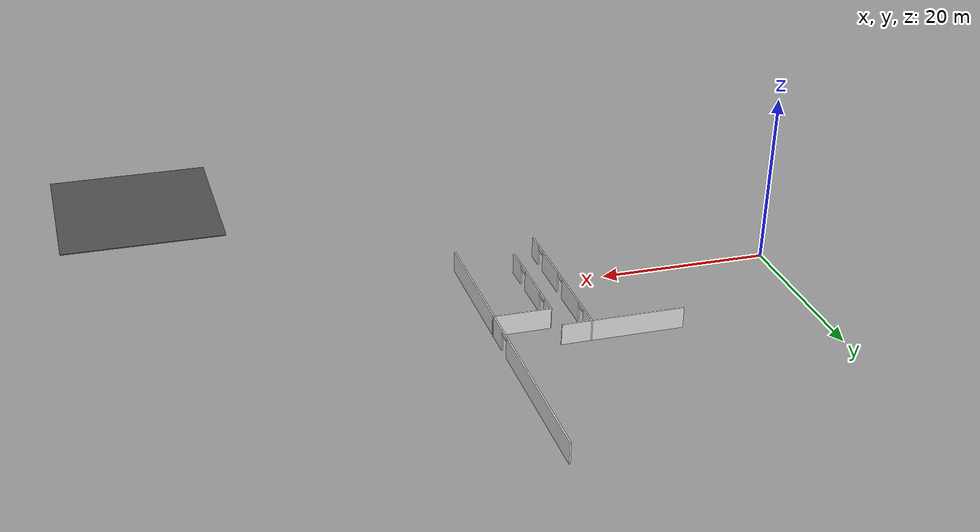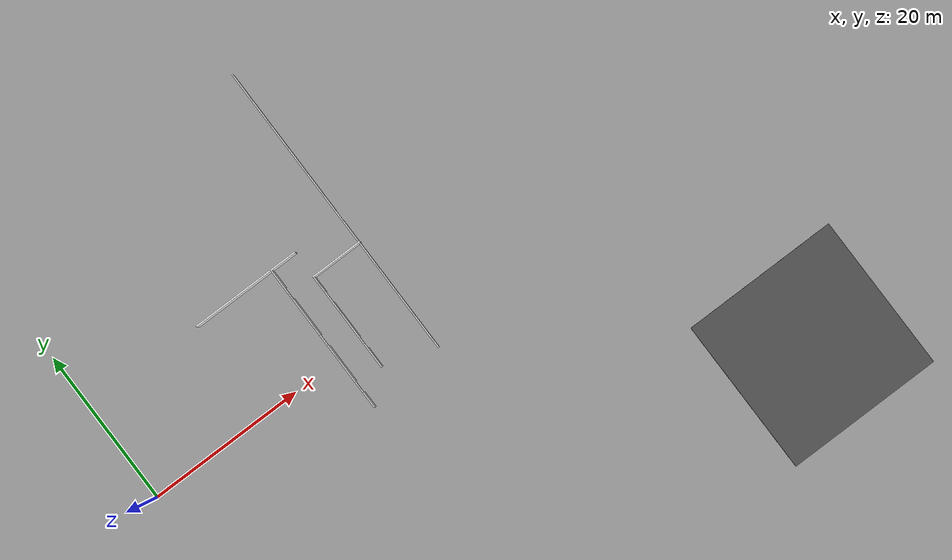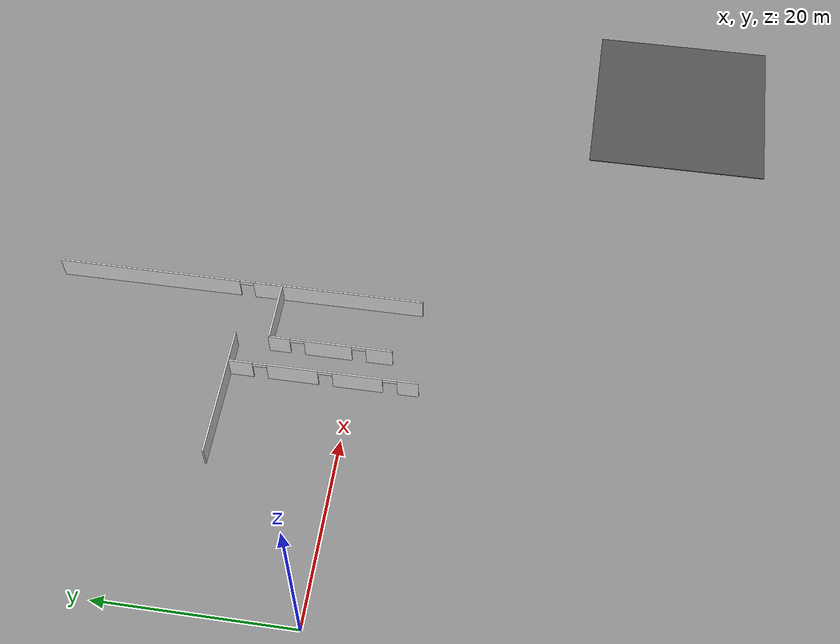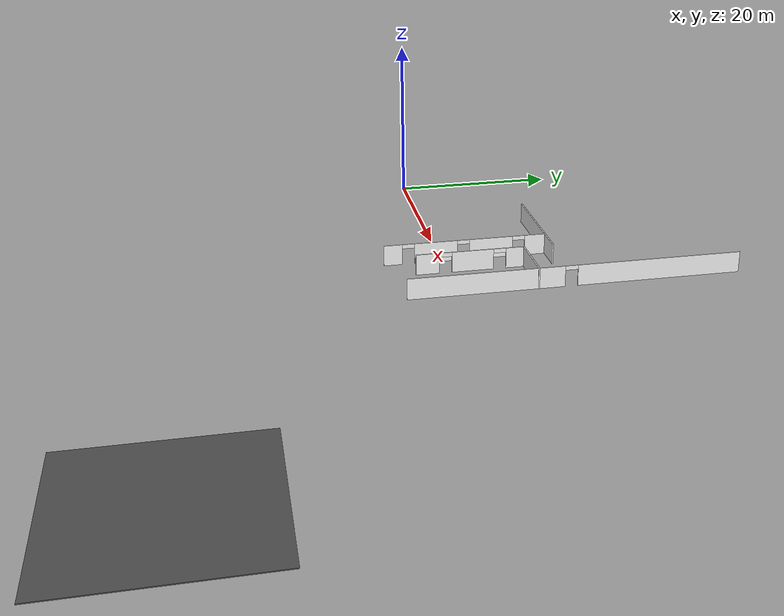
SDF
<sdf version="1.6">
 <world name="default">
  <model name="mainoffice">
   <pose>42.7555 15.4488 0 0 -0 0</pose>
   <link name="Wall_62">
    <pose>-16.4491 -12.475 0 0 -0 1.5708</pose>
    <visual name="Wall_62_Visual_0">
     <pose>-8.77826 0 1.25 0 -0 0</pose>
     <geometry><box><size>2.19348 0.15 2.5</size></box></geometry>
     <material>
      <script>
       <uri>model://office_env/materials/scripts</uri>
       <uri>model://office_env/materials/textures</uri>
       <name>wall</name>
      </script>
      <ambient>1 1 1 1</ambient>
     </material>
    </visual>
    <collision name="Wall_62_Collision_0">
     <geometry><box><size>2.19348 0.15 2.5</size></box></geometry>
     <pose>-8.77826 0 1.25 0 -0 0</pose>
    </collision>
    <visual name="Wall_62_Visual_1">
     <pose>-3.59393 0 1.25 0 -0 0</pose>
     <geometry><box><size>5.17517 0.15 2.5</size></box></geometry>
     <material>
      <script>
       <uri>model://office_env/materials/scripts</uri>
       <uri>model://office_env/materials/textures</uri>
       <name>wall</name>
      </script>
      <ambient>1 1 1 1</ambient>
     </material>
    </visual>
    <collision name="Wall_62_Collision_1">
     <geometry><box><size>5.17517 0.15 2.5</size></box></geometry>
     <pose>-3.59393 0 1.25 0 -0 0</pose>
    </collision>
    <visual name="Wall_62_Visual_2">
     <pose>3.1331 0 1.25 0 -0 0</pose>
     <geometry><box><size>5.27889 0.15 2.5</size></box></geometry>
     <material>
      <script>
       <uri>model://office_env/materials/scripts</uri>
       <uri>model://office_env/materials/textures</uri>
       <name>wall</name>
      </script>
      <ambient>1 1 1 1</ambient>
     </material>
    </visual>
    <collision name="Wall_62_Collision_2">
     <geometry><box><size>5.27889 0.15 2.5</size></box></geometry>
     <pose>3.1331 0 1.25 0 -0 0</pose>
    </collision>
    <visual name="Wall_62_Visual_3">
     <pose>8.57377 0 1.25 0 -0 0</pose>
     <geometry><box><size>2.60246 0.15 2.5</size></box></geometry>
     <material>
      <script>
       <uri>model://office_env/materials/scripts</uri>
       <uri>model://office_env/materials/textures</uri>
       <name>wall</name>
      </script>
      <ambient>1 1 1 1</ambient>
     </material>
    </visual>
    <collision name="Wall_62_Collision_3">
     <geometry><box><size>2.60246 0.15 2.5</size></box></geometry>
     <pose>8.57377 0 1.25 0 -0 0</pose>
    </collision>
    <visual name="Wall_62_Visual_4">
     <pose>-6.93152 0 2.25 0 -0 0</pose>
     <geometry><box><size>1.5 0.15 0.5</size></box></geometry>
     <material>
      <script>
       <uri>model://office_env/materials/scripts</uri>
       <uri>model://office_env/materials/textures</uri>
       <name>wall</name>
      </script>
      <ambient>1 1 1 1</ambient>
     </material>
    </visual>
    <collision name="Wall_62_Collision_4">
     <geometry><box><size>1.5 0.15 0.5</size></box></geometry>
     <pose>-6.93152 0 2.25 0 -0 0</pose>
    </collision>
    <visual name="Wall_62_Visual_5">
     <pose>-0.256349 0 2.25 0 -0 0</pose>
     <geometry><box><size>1.5 0.15 0.5</size></box></geometry>
     <material>
      <script>
       <uri>model://office_env/materials/scripts</uri>
       <uri>model://office_env/materials/textures</uri>
       <name>wall</name>
      </script>
      <ambient>1 1 1 1</ambient>
     </material>
    </visual>
    <collision name="Wall_62_Collision_5">
     <geometry><box><size>1.5 0.15 0.5</size></box></geometry>
     <pose>-0.256349 0 2.25 0 -0 0</pose>
    </collision>
    <visual name="Wall_62_Visual_6">
     <pose>6.52254 0 2.25 0 -0 0</pose>
     <geometry><box><size>1.5 0.15 0.5</size></box></geometry>
     <material>
      <script>
       <uri>model://office_env/materials/scripts</uri>
       <uri>model://office_env/materials/textures</uri>
       <name>wall</name>
      </script>
      <ambient>1 1 1 1</ambient>
     </material>
    </visual>
    <collision name="Wall_62_Collision_6">
     <geometry><box><size>1.5 0.15 0.5</size></box></geometry>
     <pose>6.52254 0 2.25 0 -0 0</pose>
    </collision>
   </link>
   <link name="Wall_63">
    <collision name="Wall_63_Collision">
     <geometry><box><size>10.75 0.15 2.5</size></box></geometry>
     <pose>0 0 1.25 0 -0 0</pose>
    </collision>
    <visual name="Wall_63_Visual">
     <pose>0 0 1.25 0 -0 0</pose>
     <geometry><box><size>10.75 0.15 2.5</size></box></geometry>
     <material>
      <script>
       <uri>model://office_env/materials/scripts</uri>
       <uri>model://office_env/materials/textures</uri>
       <name>wall</name>
      </script>
      <ambient>1 1 1 1</ambient>
     </material>
    </visual>
    <pose>-21.7491 -2.675 0 0 -0 3.14159</pose>
   </link>
   <link name="Wall_77">
    <pose>-6.49909 -1.675 0 0 -0 1.5708</pose>
    <visual name="Wall_77_Visual_0">
     <pose>-10.5358 0 1.25 0 -0 0</pose>
     <geometry><box><size>18.1784 0.15 2.5</size></box></geometry>
     <material>
      <script>
       <uri>model://office_env/materials/scripts</uri>
       <uri>model://office_env/materials/textures</uri>
       <name>wall</name>
      </script>
      <ambient>1 1 1 1</ambient>
     </material>
    </visual>
    <collision name="Wall_77_Collision_0">
     <geometry><box><size>18.1784 0.15 2.5</size></box></geometry>
     <pose>-10.5358 0 1.25 0 -0 0</pose>
    </collision>
    <visual name="Wall_77_Visual_1">
     <pose>9.83921 0 1.25 0 -0 0</pose>
     <geometry><box><size>19.5716 0.15 2.5</size></box></geometry>
     <material>
      <script>
       <uri>model://office_env/materials/scripts</uri>
       <uri>model://office_env/materials/textures</uri>
       <name>wall</name>
      </script>
      <ambient>1 1 1 1</ambient>
     </material>
    </visual>
    <collision name="Wall_77_Collision_1">
     <geometry><box><size>19.5716 0.15 2.5</size></box></geometry>
     <pose>9.83921 0 1.25 0 -0 0</pose>
    </collision>
    <visual name="Wall_77_Visual_2">
     <pose>-0.696588 0 2.25 0 -0 0</pose>
     <geometry><box><size>1.5 0.15 0.5</size></box></geometry>
     <material>
      <script>
       <uri>model://office_env/materials/scripts</uri>
       <uri>model://office_env/materials/textures</uri>
       <name>wall</name>
      </script>
      <ambient>1 1 1 1</ambient>
     </material>
    </visual>
    <collision name="Wall_77_Collision_2">
     <geometry><box><size>1.5 0.15 0.5</size></box></geometry>
     <pose>-0.696588 0 2.25 0 -0 0</pose>
    </collision>
   </link>
   <link name="Wall_82">
    <pose>-13.0216 -12.6225 0 0 -0 1.5708</pose>
    <visual name="Wall_82_Visual_0">
     <pose>-5.11472 0 1.25 0 -0 0</pose>
     <geometry><box><size>2.77056 0.15 2.5</size></box></geometry>
     <material>
      <script>
       <uri>model://office_env/materials/scripts</uri>
       <uri>model://office_env/materials/textures</uri>
       <name>wall</name>
      </script>
      <ambient>1 1 1 1</ambient>
     </material>
    </visual>
    <collision name="Wall_82_Collision_0">
     <geometry><box><size>2.77056 0.15 2.5</size></box></geometry>
     <pose>-5.11472 0 1.25 0 -0 0</pose>
    </collision>
    <visual name="Wall_82_Visual_1">
     <pose>0.250774 0 1.25 0 -0 0</pose>
     <geometry><box><size>4.96043 0.15 2.5</size></box></geometry>
     <material>
      <script>
       <uri>model://office_env/materials/scripts</uri>
       <uri>model://office_env/materials/textures</uri>
       <name>wall</name>
      </script>
      <ambient>1 1 1 1</ambient>
     </material>
    </visual>
    <collision name="Wall_82_Collision_1">
     <geometry><box><size>4.96043 0.15 2.5</size></box></geometry>
     <pose>0.250774 0 1.25 0 -0 0</pose>
    </collision>
    <visual name="Wall_82_Visual_2">
     <pose>5.36549 0 1.25 0 -0 0</pose>
     <geometry><box><size>2.26901 0.15 2.5</size></box></geometry>
     <material>
      <script>
       <uri>model://office_env/materials/scripts</uri>
       <uri>model://office_env/materials/textures</uri>
       <name>wall</name>
      </script>
      <ambient>1 1 1 1</ambient>
     </material>
    </visual>
    <collision name="Wall_82_Collision_2">
     <geometry><box><size>2.26901 0.15 2.5</size></box></geometry>
     <pose>5.36549 0 1.25 0 -0 0</pose>
    </collision>
    <visual name="Wall_82_Visual_3">
     <pose>-2.97944 0 2.25 0 -0 0</pose>
     <geometry><box><size>1.5 0.15 0.5</size></box></geometry>
     <material>
      <script>
       <uri>model://office_env/materials/scripts</uri>
       <uri>model://office_env/materials/textures</uri>
       <name>wall</name>
      </script>
      <ambient>1 1 1 1</ambient>
     </material>
    </visual>
    <collision name="Wall_82_Collision_3">
     <geometry><box><size>1.5 0.15 0.5</size></box></geometry>
     <pose>-2.97944 0 2.25 0 -0 0</pose>
    </collision>
    <visual name="Wall_82_Visual_4">
     <pose>3.48099 0 2.25 0 -0 0</pose>
     <geometry><box><size>1.5 0.15 0.5</size></box></geometry>
     <material>
      <script>
       <uri>model://office_env/materials/scripts</uri>
       <uri>model://office_env/materials/textures</uri>
       <name>wall</name>
      </script>
      <ambient>1 1 1 1</ambient>
     </material>
    </visual>
    <collision name="Wall_82_Collision_4">
     <geometry><box><size>1.5 0.15 0.5</size></box></geometry>
     <pose>3.48099 0 2.25 0 -0 0</pose>
    </collision>
   </link>
   <link name="Wall_83">
    <collision name="Wall_83_Collision">
     <geometry><box><size>6.75 0.15 2.5</size></box></geometry>
     <pose>0 0 1.25 0 -0 0</pose>
    </collision>
    <visual name="Wall_83_Visual">
     <pose>0 0 1.25 0 -0 0</pose>
     <geometry><box><size>6.75 0.15 2.5</size></box></geometry>
     <material>
      <script>
       <uri>model://office_env/materials/scripts</uri>
       <uri>model://office_env/materials/textures</uri>
       <name>wall</name>
      </script>
      <ambient>1 1 1 1</ambient>
     </material>
    </visual>
    <pose>-9.72161 -6.1975 0 0 -0 0</pose>
   </link>
   <link name="Wall_85">
    <collision name="Wall_85_Collision">
     <geometry><box><size>3.5 0.15 2.5</size></box></geometry>
     <pose>0 0 1.25 0 -0 0</pose>
    </collision>
    <visual name="Wall_85_Visual">
     <pose>0 0 1.25 0 -0 0</pose>
     <geometry><box><size>3.5 0.15 2.5</size></box></geometry>
     <material>
      <script>
       <uri>model://office_env/materials/scripts</uri>
       <uri>model://office_env/materials/textures</uri>
       <name>wall</name>
      </script>
      <ambient>1 1 1 1</ambient>
     </material>
    </visual>
    <pose>-14.7741 -2.675 0 0 -0 0</pose>
   </link>
   <static>1</static>
  </model>
  <model name="asphalt_plane">
   <static>1</static>
   <link name="link">
    <collision name="collision"><geometry><box><size>20 20 0.1</size></box></geometry></collision>
    <visual name="visual">
     <cast_shadows>0</cast_shadows>
     <geometry><box><size>20 20 0.1</size></box></geometry>
     <material>
      <script>
       <uri>model://asphalt_plane/materials/scripts</uri>
       <uri>model://asphalt_plane/materials/textures</uri>
       <name>vrc/asphalt</name>
      </script>
     </material>
    </visual>
   </link>
   <pose>70.7475 -31.5972 0 0 -0 0</pose>
  </model>
 </world>
</sdf>
